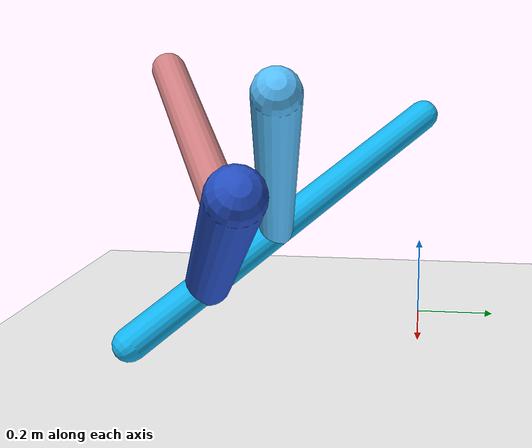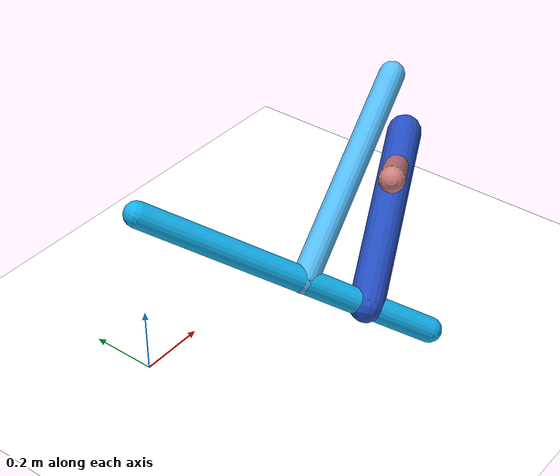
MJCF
<mujoco model="morphology">
  <option timestep="0.01"/>
  <default>
    <default class="/"/>
    <default class="0/"/>
    <default class="0/1/"/>
    <default class="0/1/2/"/>
    <default class="0/3/"/>
  </default>
  <asset>
    <texture name="texplane" type="2d" builtin="checker" rgb1="0.10000000000000001 0.20000000000000001 0.29999999999999999" rgb2="0.20000000000000001 0.29999999999999999 0.40000000000000002" width="300" height="300"/>
    <material name="MatPlane" class="/" texture="texplane" texrepeat="20 20" specular="1" shininess="1" reflectance="0.5"/>
  </asset>
  <worldbody>
    <light name="//unnamed_light_0" class="/" directional="true" pos="0 0 1.5" dir="0 0 -1.3" cutoff="100" exponent="1" diffuse="1 1 1" specular="0.10000000000000001 0.10000000000000001 0.10000000000000001"/>
    <geom name="ground" class="/" type="plane" size="15 15 0.5" material="MatPlane" rgba="1 1 1 1"/>
    <site name="body" class="/" size="9.9999999999999995e-07 9.9999999999999995e-07 9.9999999999999995e-07" pos="0 0 0.53524351716041563"/>
    <body pos="0 0 0.53524351716041563" name="0/">
      <freejoint name="0/"/>
      <geom name="0/geom" class="0/" type="capsule" contype="1" conaffinity="1" condim="3" size="0.037411222863416763" rgba="0.074568589584701694 0.70452427168124043 0.93574918847406197 1" friction="0.59999999999999998 0.10000000000000001 0.10000000000000001" fromto="0 0 0 0.52831686606802064 -0.60087685951922021 -0.4352435226307807"/>
      <site name="0/end0" class="0/" size="0.0050000000000000001" pos="0.52831686606802064 -0.60087685951922021 -0.4352435226307807"/>
      <site name="0/attach1" class="0/" size="9.9999999999999995e-07 9.9999999999999995e-07 9.9999999999999995e-07" pos="0.40787292038109624 -0.46389092459897335 -0.336018132401467"/>
      <body pos="0.40787292038109624 -0.46389092459897335 -0.336018132401467" name="0/1/">
        <joint name="0/1/joint/" class="0/" type="hinge" axis="0 0 1" limited="true" range="-66.971601659119059 66.971601659119059"/>
        <geom name="0/1/geom" class="0/1/" type="capsule" contype="1" conaffinity="1" condim="3" size="0.050541973057085784" rgba="0.14279574295082931 0.30734980835070003 0.76366381418708107 1" friction="0.59999999999999998 0.10000000000000001 0.10000000000000001" fromto="0 0 0 0.43218943507583574 0.1792459661835093 0.28903511003334303"/>
        <site name="0/1/end1" class="0/1/" size="0.0050000000000000001" pos="0.43218943507583574 0.1792459661835093 0.28903511003334303"/>
        <site name="0/1/attach2" class="0/1/" size="9.9999999999999995e-07 9.9999999999999995e-07 9.9999999999999995e-07" pos="0.34251549490033023 0.14205465435650855 0.22906391439038915"/>
        <body pos="0.34251549490033023 0.14205465435650855 0.22906391439038915" name="0/1/2/">
          <joint name="0/1/2/joint/" class="0/1/" type="hinge" axis="0 -0.84984448676606195 0.52703353623211546" limited="true" range="-48.558243087128339 48.558243087128339"/>
          <geom name="0/1/2/geom" class="0/1/2/" type="capsule" contype="1" conaffinity="1" condim="3" size="0.035236163254133333" rgba="0.81275472755863287 0.49555434743318183 0.50159958707737407 1" friction="0.59999999999999998 0.10000000000000001 0.10000000000000001" fromto="0 0 0 -0.3623980159325737 -0.21368206269487022 0.23216769023119044"/>
          <site name="0/1/2/end2" class="0/1/2/" size="0.0050000000000000001" pos="-0.3623980159325737 -0.21368206269487022 0.23216769023119044"/>
        </body>
      </body>
      <site name="0/attach3" class="0/" size="9.9999999999999995e-07 9.9999999999999995e-07 9.9999999999999995e-07" pos="0.29204135347531379 -0.33215084089970343 -0.24059256026872952"/>
      <body pos="0.29204135347531379 -0.33215084089970343 -0.24059256026872952" name="0/3/">
        <joint name="0/3/joint/" class="0/" type="hinge" axis="0 0 1" limited="true" range="-41.608027596664158 41.608027596664158"/>
        <geom name="0/3/geom" class="0/3/" type="capsule" contype="1" conaffinity="1" condim="3" size="0.038515608162840255" rgba="0.33660012750916035 0.74728496396457955 0.98907435551890344 1" friction="0.59999999999999998 0.10000000000000001 0.10000000000000001" fromto="0 0 0 0.57278745445946155 0.1178250584006878 0.35100856847161133"/>
        <site name="0/3/end3" class="0/3/" size="0.0050000000000000001" pos="0.57278745445946155 0.1178250584006878 0.35100856847161133"/>
      </body>
      <camera name="0/iso" class="0/" mode="trackcom" pos="-2.2999999999999998 -2.2999999999999998 1" xyaxes="0.45000000000000001 -0.45000000000000001 0 0.29999999999999999 0.14999999999999999 0.93999999999999995"/>
    </body>
  </worldbody>
  <actuator>
    <motor name="0/1/motor" class="0/1/" ctrllimited="true" ctrlrange="-1 1" gear="93" joint="0/1/joint/"/>
    <motor name="0/1/2/motor" class="0/1/2/" ctrllimited="true" ctrlrange="-1 1" gear="95" joint="0/1/2/joint/"/>
    <motor name="0/3/motor" class="0/3/" ctrllimited="true" ctrlrange="-1 1" gear="68" joint="0/3/joint/"/>
  </actuator>
  <sensor>
    <subtreelinvel name="velocity" body="0/"/>
  </sensor>
</mujoco>
